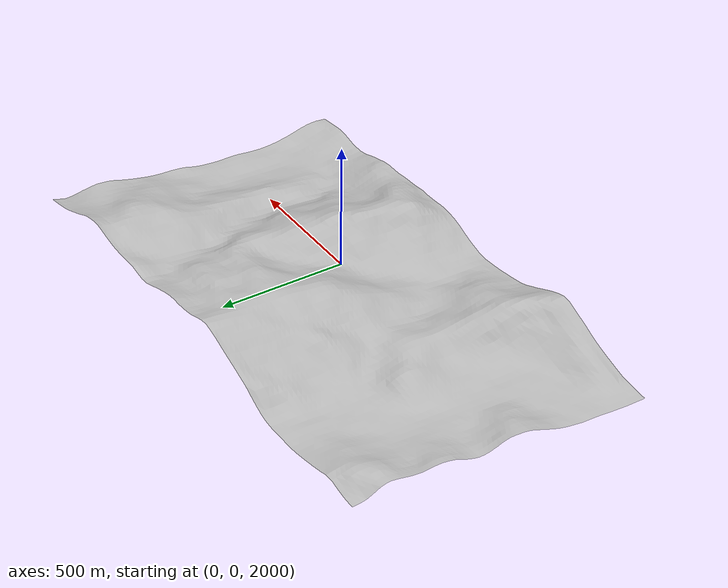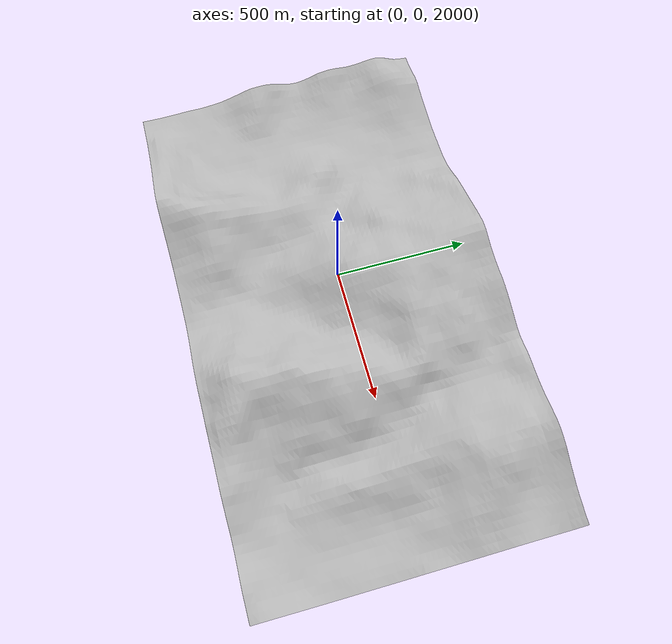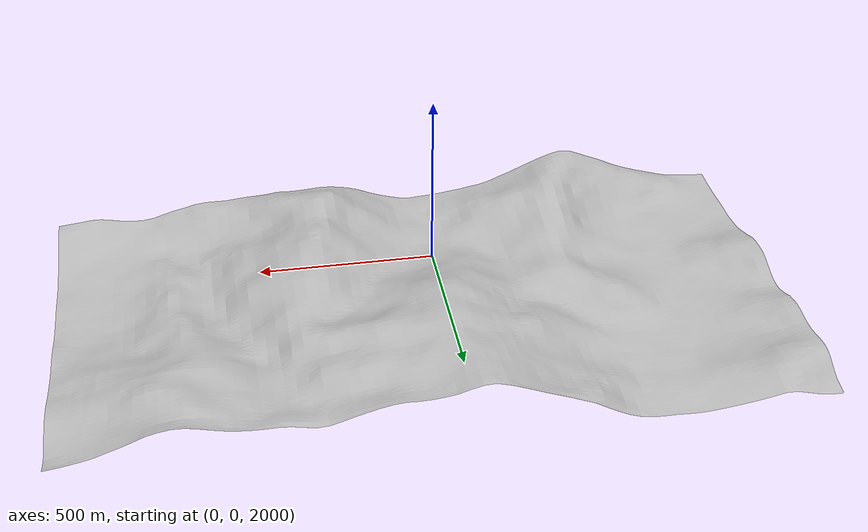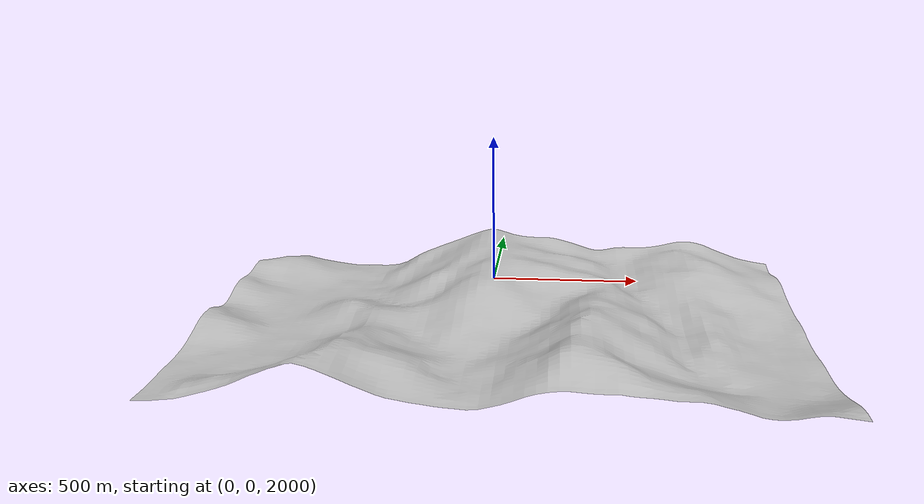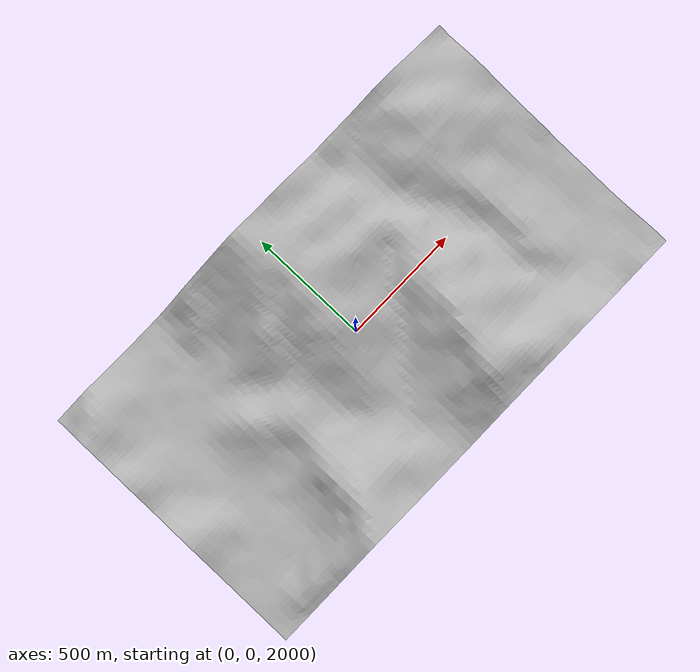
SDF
<sdf version='1.9'>
  <world name='taif_world'>
    <physics type="ode">
      <max_step_size>0.004</max_step_size>
      <real_time_factor>1.0</real_time_factor>
      <real_time_update_rate>250</real_time_update_rate>
    </physics>
    <plugin name='gz::sim::systems::Physics' filename='gz-sim-physics-system'/>
    <plugin name='gz::sim::systems::UserCommands' filename='gz-sim-user-commands-system'/>
    <plugin name='gz::sim::systems::SceneBroadcaster' filename='gz-sim-scene-broadcaster-system'/>
    <plugin name='gz::sim::systems::Contact' filename='gz-sim-contact-system'/>
    <plugin name='gz::sim::systems::Imu' filename='gz-sim-imu-system'/>
    <plugin name='gz::sim::systems::AirPressure' filename='gz-sim-air-pressure-system'/>
    <plugin name='gz::sim::systems::ApplyLinkWrench' filename='gz-sim-apply-link-wrench-system'/>
    <plugin name='gz::sim::systems::NavSat' filename='gz-sim-navsat-system'/>
    <plugin name='gz::sim::systems::Sensors' filename='gz-sim-sensors-system'>
      <render_engine>ogre2</render_engine>
    </plugin>
    <gui fullscreen='false'>
      <plugin name='3D View' filename='GzScene3D'>
        <gz-gui>
          <title>3D View</title>
          <property type='bool' key='showTitleBar'>0</property>
          <property type='string' key='state'>docked</property>
        </gz-gui>
        <engine>ogre2</engine>
        <scene>scene</scene>
        <ambient_light>0.5984631152222222 0.5984631152222222 0.5984631152222222</ambient_light>
        <background_color>0.8984631152222222 0.8984631152222222 0.8984631152222222</background_color>
        <camera_clip>
          <near>0.25</near>
          <far>50000</far>
        </camera_clip>
        <camera_pose>-23 -45.4 34.5 0.0 0.54 1.11</camera_pose>
      </plugin>
      <plugin name='World control' filename='WorldControl'>
        <gz-gui>
          <title>World control</title>
          <property type='bool' key='showTitleBar'>0</property>
          <property type='bool' key='resizable'>0</property>
          <property type='double' key='height'>72</property>
          <property type='double' key='width'>121</property>
          <property type='double' key='z'>1</property>
          <property type='string' key='state'>floating</property>
          <anchors target='3D View'>
            <line own='left' target='left'/>
            <line own='bottom' target='bottom'/>
          </anchors>
        </gz-gui>
        <play_pause>1</play_pause>
        <step>1</step>
        <start_paused>1</start_paused>
      </plugin>
      <plugin name='World stats' filename='WorldStats'>
        <gz-gui>
          <title>World stats</title>
          <property type='bool' key='showTitleBar'>0</property>
          <property type='bool' key='resizable'>0</property>
          <property type='double' key='height'>110</property>
          <property type='double' key='width'>290</property>
          <property type='double' key='z'>1</property>
          <property type='string' key='state'>floating</property>
          <anchors target='3D View'>
            <line own='right' target='right'/>
            <line own='bottom' target='bottom'/>
          </anchors>
        </gz-gui>
        <sim_time>1</sim_time>
        <real_time>1</real_time>
        <real_time_factor>1</real_time_factor>
        <iterations>1</iterations>
      </plugin>
      <plugin name='Entity tree' filename='EntityTree'/>
    </gui>
    <gravity>0 0 -9.8</gravity>
    <magnetic_field>6e-06 2.3e-05 -4.2e-05</magnetic_field>
    <atmosphere type='adiabatic'/>
    <scene>
      <grid>false</grid>
      <ambient>0.4 0.4 0.4 1</ambient>
      <background>0.7 0.7 0.7 1</background>
      <shadows>true</shadows>
    </scene>

    <light name='sunUTC' type='directional'>
      <pose>0 0 500 0 -0 0</pose>
      <cast_shadows>true</cast_shadows>
      <intensity>1</intensity>
      <direction>0.001 0.625 -0.78</direction>
      <diffuse>0.904 0.904 0.904 1</diffuse>
      <specular>0.271 0.271 0.271 1</specular>
      <attenuation>
        <range>2000</range>
        <linear>0</linear>
        <constant>1</constant>
        <quadratic>0</quadratic>
      </attenuation>
      <spot>
        <inner_angle>0</inner_angle>
        <outer_angle>0</outer_angle>
        <falloff>0</falloff>
      </spot>
    </light>
    <include>
      <uri>
      model://taif_dem
      </uri>
    </include>
    <spherical_coordinates>
      <surface_model>EARTH_WGS84</surface_model>
      <world_frame_orientation>ENU</world_frame_orientation>
      <latitude_deg>21.2713</latitude_deg>
      <longitude_deg>40.3460</longitude_deg>
      <altitude>1874.6</altitude>
    </spherical_coordinates>

  </world>
</sdf>

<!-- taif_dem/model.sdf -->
<sdf version="1.5">
  <model name="taif_terrain">
    <pose>0 0 0 0 0 0</pose>
    <static>true</static>
    <link name="body">
      <visual name="visual">
        <transparency>0</transparency>
        <geometry>
          <mesh>
            <uri>media/taif.dae</uri>
            <scale>1 1 1</scale>
          </mesh>
        </geometry>

      </visual>
      <collision name="collision">
        <geometry>
          <mesh>
            <uri>media/taif.dae</uri>

            <scale>1 1 1</scale>
          </mesh>

        </geometry>
      </collision>
    </link>

  </model>
</sdf>
